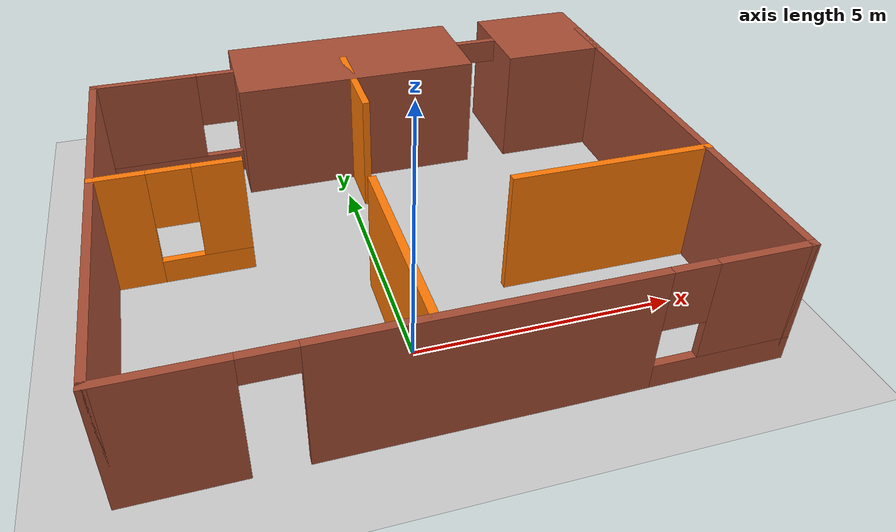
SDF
<sdf version="1.6">
 <world name="default">
  <plugin name="hello" filename="libhello.so"/>
  <light name="sun" type="directional">
   <pose>0 0 10 0 -0 0</pose>
   <diffuse>0.8 0.8 0.8 1</diffuse>
   <specular>0.2 0.2 0.2 1</specular>
   <attenuation>
    <range>1000</range>
    <constant>0.9</constant>
    <linear>0.01</linear>
    <quadratic>0.001</quadratic>
   </attenuation>
   <direction>-0.5 0.1 -0.9</direction>
  </light>
  <model name="ground_plane">
   <static>1</static>
   <link name="link">
    <collision name="collision">
     <geometry><plane><normal>0 0 1</normal><size>100 100</size></plane></geometry>
     <surface><friction><ode><mu>100</mu><mu2>50</mu2></ode></friction></surface>
    </collision>
    <visual name="visual">
     <cast_shadows>0</cast_shadows>
     <geometry><plane><normal>0 0 1</normal><size>100 100</size></plane></geometry>
     <material>
      <script><uri>file://media/materials/scripts/gazebo.material</uri><name>Gazebo/Grey</name></script>
     </material>
    </visual>
   </link>
  </model>
  <gravity>0 0 -9.8</gravity>
  <magnetic_field>6e-06 2.3e-05 -4.2e-05</magnetic_field>
  <atmosphere type="adiabatic"/>
  <physics name="default_physics" default="0" type="ode">
   <max_step_size>0.001</max_step_size>
   <real_time_factor>1</real_time_factor>
   <real_time_update_rate>1000</real_time_update_rate>
  </physics>
  <scene><ambient>0.4 0.4 0.4 1</ambient><background>0.7 0.7 0.7 1</background><shadows>1</shadows></scene>
  <spherical_coordinates>
   <surface_model>EARTH_WGS84</surface_model>
   <latitude_deg>0</latitude_deg>
   <longitude_deg>0</longitude_deg>
   <elevation>0</elevation>
   <heading_deg>0</heading_deg>
  </spherical_coordinates>
  <model name="building">
   <pose>0.5414 2.52297 0 0 -0 0</pose>
   <link name="Wall_0">
    <collision name="Wall_0_Collision">
     <geometry><box><size>8.75 0.15 2.5</size></box></geometry>
     <pose>0 0 1.25 0 -0 0</pose>
    </collision>
    <visual name="Wall_0_Visual">
     <pose>0 0 1.25 0 -0 0</pose>
     <geometry><box><size>8.75 0.15 2.5</size></box></geometry>
     <material>
      <script><uri>file://media/materials/scripts/gazebo.material</uri><name>Gazebo/Bricks</name></script>
      <ambient>0.996078 0.47451 0.0196078 1</ambient>
     </material>
     <meta><layer>0</layer></meta>
    </visual>
    <pose>5.54244 0 0 0 -0 1.5708</pose>
   </link>
   <link name="Wall_1">
    <pose>-0.007558 4.3 0 0 -0 3.14159</pose>
    <visual name="Wall_1_Visual_0">
     <pose>-4.50852 0 1.25 0 -0 0</pose>
     <geometry><box><size>2.23296 2.15 2.5</size></box></geometry>
     <material>
      <script><uri>file://media/materials/scripts/gazebo.material</uri><name>Gazebo/Bricks</name></script>
      <ambient>0.996078 0.47451 0.0196078 1</ambient>
     </material>
     <meta><layer>0</layer></meta>
    </visual>
    <collision name="Wall_1_Collision_0">
     <geometry><box><size>2.23296 2.15 2.5</size></box></geometry>
     <pose>-4.50852 0 1.25 0 -0 0</pose>
    </collision>
    <visual name="Wall_1_Visual_1">
     <pose>0.06982 0 1.25 0 -0 0</pose>
     <geometry><box><size>5.12373 2.15 2.5</size></box></geometry>
     <material>
      <script><uri>file://media/materials/scripts/gazebo.material</uri><name>Gazebo/Bricks</name></script>
      <ambient>0.996078 0.47451 0.0196078 1</ambient>
     </material>
     <meta><layer>0</layer></meta>
    </visual>
    <collision name="Wall_1_Collision_1">
     <geometry><box><size>5.12373 2.15 2.5</size></box></geometry>
     <pose>0.06982 0 1.25 0 -0 0</pose>
    </collision>
    <visual name="Wall_1_Visual_2">
     <pose>4.12834 0 0.25 0 -0 0</pose>
     <geometry><box><size>2.99331 0.15 0.5</size></box></geometry>
     <material>
      <script><uri>file://media/materials/scripts/gazebo.material</uri><name>Gazebo/Bricks</name></script>
      <ambient>0.996078 0.47451 0.0196078 1</ambient>
     </material>
     <meta><layer>0</layer></meta>
    </visual>
    <collision name="Wall_1_Collision_2">
     <geometry><box><size>2.99331 0.15 0.5</size></box></geometry>
     <pose>4.12834 0 0.25 0 -0 0</pose>
    </collision>
    <visual name="Wall_1_Visual_3">
     <pose>4.52834 0 1.5 0 -0 0</pose>
     <geometry><box><size>2.19331 0.15 2</size></box></geometry>
     <material>
      <script><uri>file://media/materials/scripts/gazebo.material</uri><name>Gazebo/Bricks</name></script>
      <ambient>0.996078 0.47451 0.0196078 1</ambient>
     </material>
     <meta><layer>0</layer></meta>
    </visual>
    <collision name="Wall_1_Collision_3">
     <geometry><box><size>2.19331 0.15 2</size></box></geometry>
     <pose>4.52834 0 1.5 0 -0 0</pose>
    </collision>
    <visual name="Wall_1_Visual_4">
     <pose>3.03169 0 1.9 0 -0 0</pose>
     <geometry><box><size>0.8 0.15 1.2</size></box></geometry>
     <material>
      <script><uri>file://media/materials/scripts/gazebo.material</uri><name>Gazebo/Bricks</name></script>
      <ambient>0.996078 0.47451 0.0196078 1</ambient>
     </material>
     <meta><layer>0</layer></meta>
    </visual>
    <collision name="Wall_1_Collision_4">
     <geometry><box><size>0.8 0.15 1.2</size></box></geometry>
     <pose>3.03169 0 1.9 0 -0 0</pose>
    </collision>
    <visual name="Wall_1_Visual_5">
     <pose>-2.94204 0 2.25 0 -0 0</pose>
     <geometry><box><size>0.9 0.15 0.5</size></box></geometry>
     <material>
      <script><uri>file://media/materials/scripts/gazebo.material</uri><name>Gazebo/Bricks</name></script>
      <ambient>0.996078 0.47451 0.0196078 1</ambient>
     </material>
     <meta><layer>0</layer></meta>
    </visual>
    <collision name="Wall_1_Collision_5">
     <geometry><box><size>0.9 0.15 0.5</size></box></geometry>
     <pose>-2.94204 0 2.25 0 -0 0</pose>
    </collision>
   </link>
   <link name="Wall_11">
    <collision name="Wall_11_Collision">
     <geometry><box><size>4 0.15 2.5</size></box></geometry>
     <pose>0 -2 1.25 0 -0 0</pose>
    </collision>
    <visual name="Wall_11_Visual">
     <pose>0 -2 1.25 0 -0 0</pose>
     <geometry><box><size>4 0.15 2.5</size></box></geometry>
     <material>
      <script><uri>file://media/materials/scripts/gazebo.material</uri><name>Gazebo/Grey</name></script>
      <ambient>0.996078 0.47451 0.0196078 1</ambient>
     </material>
     <meta><layer>0</layer></meta>
    </visual>
    <pose>3.63256 0.74692 0 0 -0 0</pose>
   </link>
   <link name="Wall_2">
    <collision name="Wall_2_Collision">
     <geometry><box><size>8.75 0.15 2.5</size></box></geometry>
     <pose>0 0 1.25 0 -0 0</pose>
    </collision>
    <visual name="Wall_2_Visual">
     <pose>0 0 1.25 0 -0 0</pose>
     <geometry><box><size>8.75 0.15 2.5</size></box></geometry>
     <material>
      <script><uri>file://media/materials/scripts/gazebo.material</uri><name>Gazebo/Bricks</name></script>
      <ambient>0.996078 0.47451 0.0196078 1</ambient>
     </material>
     <meta><layer>0</layer></meta>
    </visual>
    <pose>-5.55756 0 0 0 0 -1.5708</pose>
   </link>
   <link name="Wall_3">
    <pose>-0.007558 -4.3 0 0 -0 0</pose>
    <visual name="Wall_3_Visual_0">
     <pose>-4.60363 0 1.25 0 -0 0</pose>
     <geometry><box><size>2.04275 0.15 2.5</size></box></geometry>
     <material>
      <script><uri>file://media/materials/scripts/gazebo.material</uri><name>Gazebo/Bricks</name></script>
      <ambient>0.996078 0.47451 0.0196078 1</ambient>
     </material>
     <meta><layer>0</layer></meta>
    </visual>
    <collision name="Wall_3_Collision_0">
     <geometry><box><size>2.04275 0.15 2.5</size></box></geometry>
     <pose>-4.60363 0 1.25 0 -0 0</pose>
    </collision>
    <visual name="Wall_3_Visual_1">
     <pose>0.181315 0 1.25 0 -0 0</pose>
     <geometry><box><size>5.72714 0.15 2.5</size></box></geometry>
     <material>
      <script><uri>file://media/materials/scripts/gazebo.material</uri><name>Gazebo/Bricks</name></script>
      <ambient>0.996078 0.47451 0.0196078 1</ambient>
     </material>
     <meta><layer>0</layer></meta>
    </visual>
    <collision name="Wall_3_Collision_1">
     <geometry><box><size>5.72714 0.15 2.5</size></box></geometry>
     <pose>0.181315 0 1.25 0 -0 0</pose>
    </collision>
    <visual name="Wall_3_Visual_2">
     <pose>4.33494 0 0.25 0 -0 0</pose>
     <geometry><box><size>2.58012 0.15 0.5</size></box></geometry>
     <material>
      <script><uri>file://media/materials/scripts/gazebo.material</uri><name>Gazebo/Bricks</name></script>
      <ambient>0.996078 0.47451 0.0196078 1</ambient>
     </material>
     <meta><layer>0</layer></meta>
    </visual>
    <collision name="Wall_3_Collision_2">
     <geometry><box><size>2.58012 0.15 0.5</size></box></geometry>
     <pose>4.33494 0 0.25 0 -0 0</pose>
    </collision>
    <visual name="Wall_3_Visual_3">
     <pose>4.73494 0 1.5 0 -0 0</pose>
     <geometry><box><size>1.78012 0.15 2</size></box></geometry>
     <material>
      <script><uri>file://media/materials/scripts/gazebo.material</uri><name>Gazebo/Bricks</name></script>
      <ambient>0.996078 0.47451 0.0196078 1</ambient>
     </material>
     <meta><layer>0</layer></meta>
    </visual>
    <collision name="Wall_3_Collision_3">
     <geometry><box><size>1.78012 0.15 2</size></box></geometry>
     <pose>4.73494 0 1.5 0 -0 0</pose>
    </collision>
    <visual name="Wall_3_Visual_4">
     <pose>3.44488 0 1.9 0 -0 0</pose>
     <geometry><box><size>0.8 0.15 1.2</size></box></geometry>
     <material>
      <script><uri>file://media/materials/scripts/gazebo.material</uri><name>Gazebo/Bricks</name></script>
      <ambient>0.996078 0.47451 0.0196078 1</ambient>
     </material>
     <meta><layer>0</layer></meta>
    </visual>
    <collision name="Wall_3_Collision_4">
     <geometry><box><size>0.8 0.15 1.2</size></box></geometry>
     <pose>3.44488 0 1.9 0 -0 0</pose>
    </collision>
    <visual name="Wall_3_Visual_5">
     <pose>-3.13225 0 2.25 0 -0 0</pose>
     <geometry><box><size>0.9 0.15 0.5</size></box></geometry>
     <material>
      <script><uri>file://media/materials/scripts/gazebo.material</uri><name>Gazebo/Bricks</name></script>
      <ambient>0.996078 0.47451 0.0196078 1</ambient>
     </material>
     <meta><layer>0</layer></meta>
    </visual>
    <collision name="Wall_3_Collision_5">
     <geometry><box><size>0.9 0.15 0.5</size></box></geometry>
     <pose>-3.13225 0 2.25 0 -0 0</pose>
    </collision>
   </link>
   <link name="Wall_5">
    <collision name="Wall_5_Collision">
     <geometry><box><size>3.75 0.15 2.5</size></box></geometry>
     <pose>0 -0.5 1.25 0 -0 0</pose>
    </collision>
    <visual name="Wall_5_Visual">
     <pose>0 -0.5 1.25 0 -0 0</pose>
     <geometry><box><size>3.75 0.15 2.5</size></box></geometry>
     <material>
      <script><uri>file://media/materials/scripts/gazebo.material</uri><name>Gazebo/Grey</name></script>
      <ambient>0.996078 0.47451 0.0196078 1</ambient>
     </material>
     <meta><layer>0</layer></meta>
    </visual>
    <pose>-0.243457 -2.4208 0 0 0 -1.5708</pose>
   </link>
   <link name="Wall_7">
    <pose>-4.25344 0.666465 0 0 -0 0</pose>
    <visual name="Wall_7_Visual_0">
     <pose>-0.863695 0 1.25 0 -0 0</pose>
     <geometry><box><size>1.02261 0.15 2.5</size></box></geometry>
     <material>
      <script><uri>file://media/materials/scripts/gazebo.material</uri><name>Gazebo/Grey</name></script>
      <ambient>0.996078 0.47451 0.0196078 1</ambient>
     </material>
     <meta><layer>0</layer></meta>
    </visual>
    <collision name="Wall_7_Collision_0">
     <geometry><box><size>1.02261 0.15 2.5</size></box></geometry>
     <pose>-0.863695 0 1.25 0 -0 0</pose>
    </collision>
    <visual name="Wall_7_Visual_1">
     <pose>0.511305 0 0.25 0 -0 0</pose>
     <geometry><box><size>1.72739 0.15 0.5</size></box></geometry>
     <material>
      <script><uri>file://media/materials/scripts/gazebo.material</uri><name>Gazebo/Grey</name></script>
      <ambient>0.996078 0.47451 0.0196078 1</ambient>
     </material>
     <meta><layer>0</layer></meta>
    </visual>
    <collision name="Wall_7_Collision_1">
     <geometry><box><size>1.72739 0.15 0.5</size></box></geometry>
     <pose>0.511305 0 0.25 0 -0 0</pose>
    </collision>
    <visual name="Wall_7_Visual_2">
     <pose>0.911305 0 1.5 0 -0 0</pose>
     <geometry><box><size>0.927391 0.15 2</size></box></geometry>
     <material>
      <script><uri>file://media/materials/scripts/gazebo.material</uri><name>Gazebo/Grey</name></script>
      <ambient>0.996078 0.47451 0.0196078 1</ambient>
     </material>
     <meta><layer>0</layer></meta>
    </visual>
    <collision name="Wall_7_Collision_2">
     <geometry><box><size>0.927391 0.15 2</size></box></geometry>
     <pose>0.911305 0 1.5 0 -0 0</pose>
    </collision>
    <visual name="Wall_7_Visual_3">
     <pose>0.047609 0 1.9 0 -0 0</pose>
     <geometry><box><size>0.8 0.15 1.2</size></box></geometry>
     <material>
      <script><uri>file://media/materials/scripts/gazebo.material</uri><name>Gazebo/Grey</name></script>
      <ambient>0.996078 0.47451 0.0196078 1</ambient>
     </material>
     <meta><layer>0</layer></meta>
    </visual>
    <collision name="Wall_7_Collision_3">
     <geometry><box><size>0.8 0.15 1.2</size></box></geometry>
     <pose>0.047609 0 1.9 0 -0 0</pose>
    </collision>
   </link>
   <link name="Wall_9">
    <collision name="Wall_9_Collision">
     <geometry><box><size>2.25 0.15 2.5</size></box></geometry>
     <pose>0 0 1.25 0 -0 0</pose>
    </collision>
    <visual name="Wall_9_Visual">
     <pose>0 0 1.25 0 -0 0</pose>
     <geometry><box><size>2.25 0.15 2.5</size></box></geometry>
     <material>
      <script><uri>file://media/materials/scripts/gazebo.material</uri><name>Gazebo/Grey</name></script>
      <ambient>0.996078 0.47451 0.0196078 1</ambient>
     </material>
     <meta><layer>0</layer></meta>
    </visual>
    <pose>-0.20323 3.21679 0 0 0 -1.5708</pose>
   </link>
   <static>1</static>
  </model>
 </world>
</sdf>
